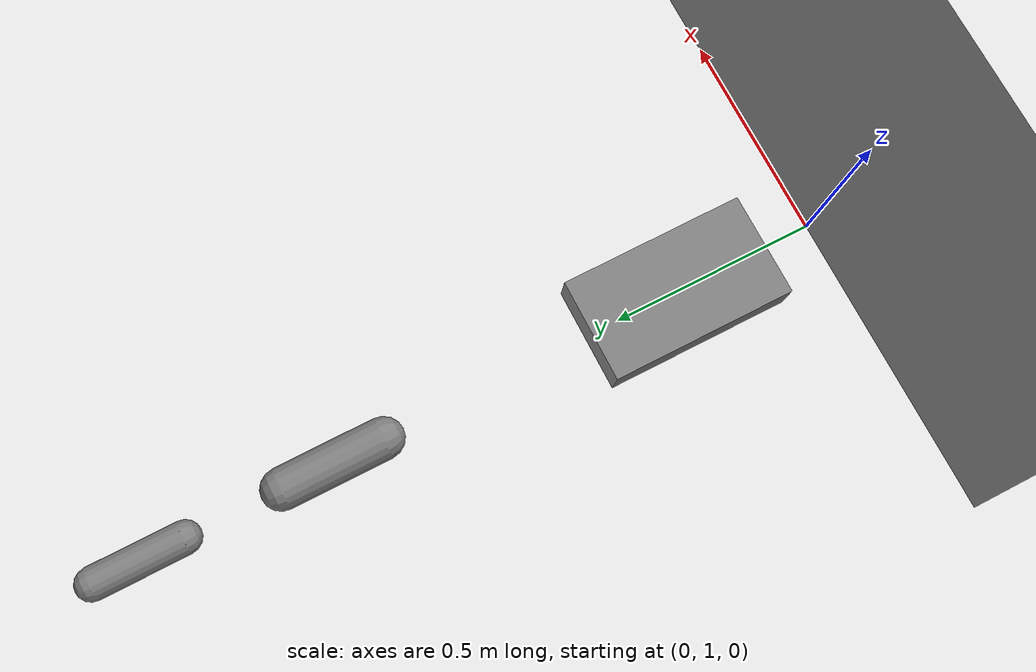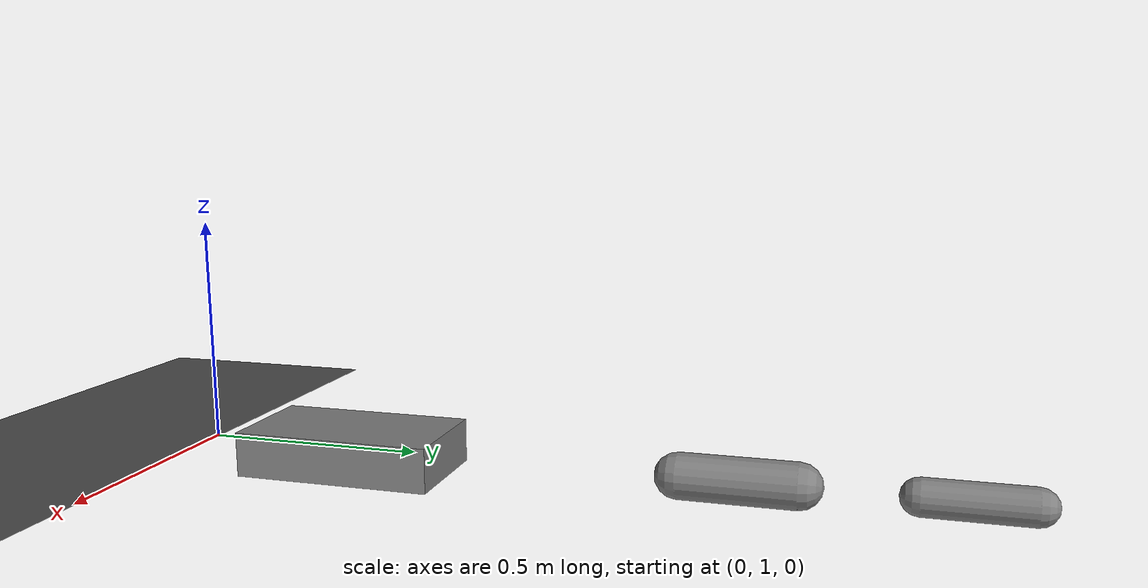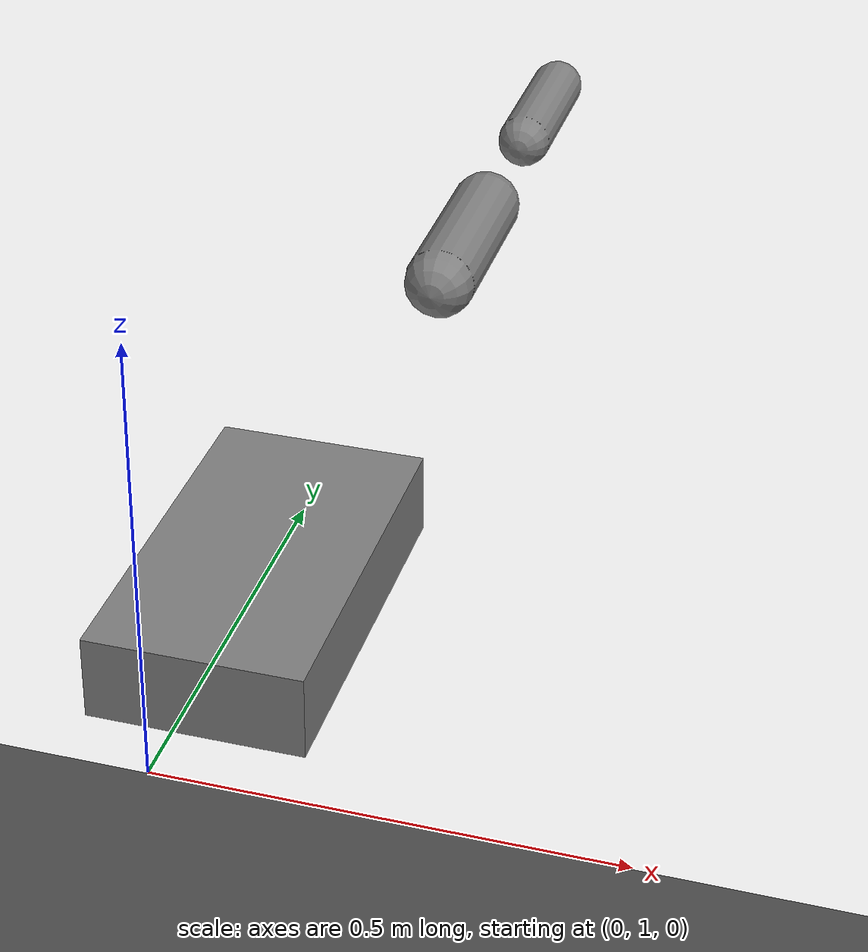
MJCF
<mujoco model="hopper">
  <compiler angle="radian" />
  <option gravity="0 -9.81 0" />
  <default>
    <geom friction="0.8" />
    <joint damping="5.0" />
  </default>
  <custom>
    <numeric name="gravityScale" data="1" />
    <text name="forwardBody" data="torso" />
    <numeric name="groundY" data="0" />
    <numeric name="groundFriction" data="0.8" />
    <numeric name="groundRestitution" data="0.1" />
    <text name="defaultReward" data="{&quot;forwardVelWeight&quot;:1,&quot;aliveBonusWeight&quot;:1,&quot;ctrlCostWeight&quot;:0.001,&quot;terminationPenalty&quot;:0,&quot;healthyYMin&quot;:0.7,&quot;healthyAngleMax&quot;:0.4}" />
  </custom>
  <worldbody>
    <geom name="ground" type="plane" pos="0 0 0" size="50 1 1" friction="0.8 0.005 0.0001" rgba="0.3 0.3 0.3 1" />
    <body name="torso" pos="0 1.35 0">
      <geom name="torso" type="box" size="0.125 0.225 0.05" mass="3.53" friction="0.3" rl-forge:minY="0.7" rl-forge:maxAngle="0.4" />
      <body name="thigh" pos="0 0.87 0">
        <joint name="hip" type="hinge" axis="0 0 1" limited="true" range="-0.698 0.698" pos="0 0.175 0" damping="5" rl-forge:maxVelocity="8" rl-forge:anchorA="0 -0.225" />
        <geom name="thigh" type="capsule" size="0.05" fromto="0 -0.12499999999999999 0 0 0.12499999999999999 0" mass="0.898" friction="0.3" />
        <body name="shin" pos="0 0.47 0">
          <joint name="knee" type="hinge" axis="0 0 1" limited="true" range="-1.396 0" pos="0 0.15 0" damping="5" rl-forge:maxVelocity="8" rl-forge:anchorA="0 -0.175" />
          <geom name="shin" type="capsule" size="0.04" fromto="0 -0.10999999999999999 0 0 0.10999999999999999 0" mass="0.357" friction="0.8" rl-forge:isFootBody="true" />
        </body>
      </body>
    </body>
  </worldbody>
  <actuator>
    <motor name="hip_motor" joint="hip" gear="40" ctrllimited="true" ctrlrange="-1 1" />
    <motor name="knee_motor" joint="knee" gear="40" ctrllimited="true" ctrlrange="-1 1" />
  </actuator>
</mujoco>
